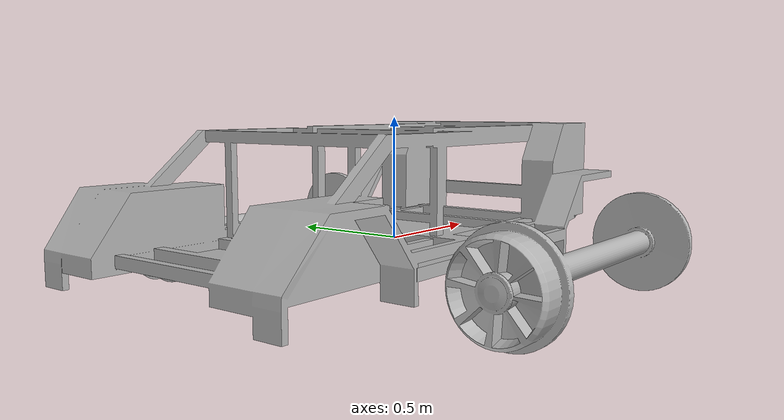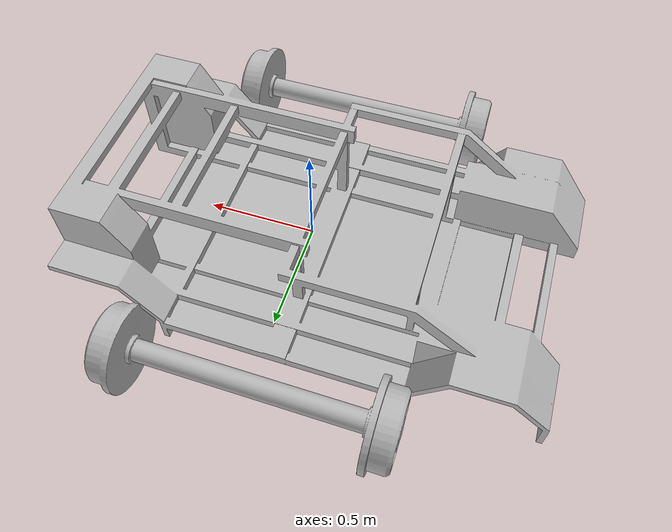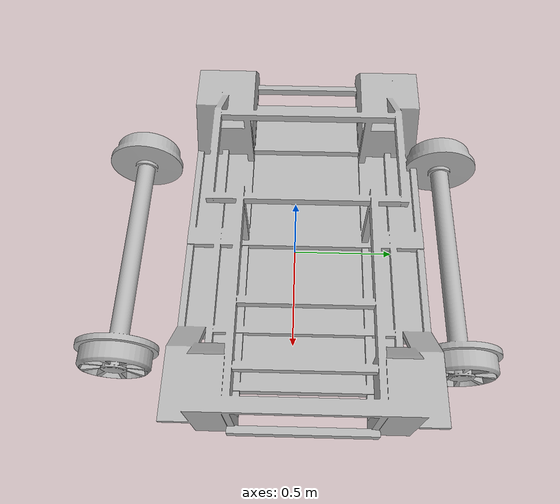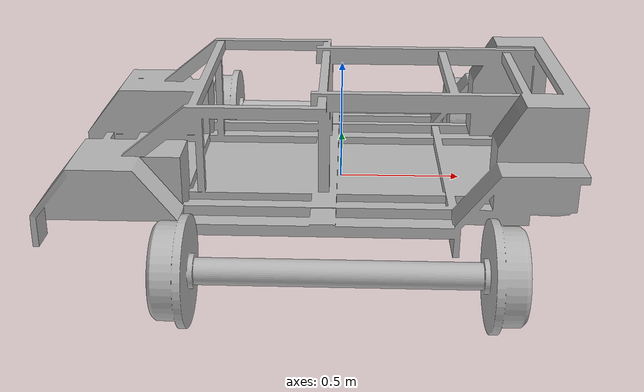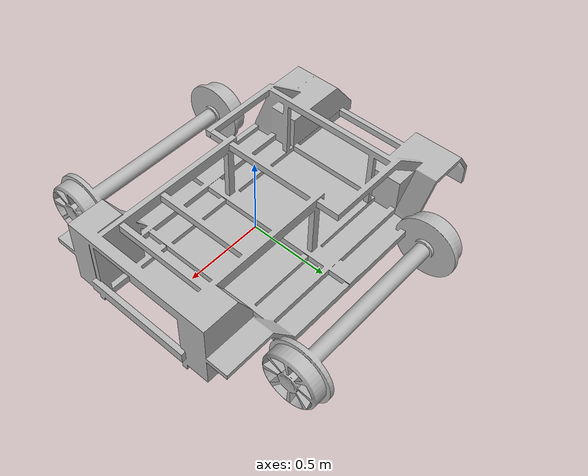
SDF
<?xml version='1.0'?>
<sdf version='1.7'>
  <model name='amp'>
    <static>false</static>

    <link name='hull'>

      <pose>0.003725 0.051897 0.000757 0 -0 0</pose>

      <collision name='collision'>
        <geometry>
          <mesh>
            <uri>model://amp_hull/amp_hull.obj</uri>
          </mesh>
        </geometry>
      </collision>

      <visual name='visual'>
        <geometry>
          <mesh>
            <uri>model://amp_hull/amp_hull.obj</uri>
            <scale>1 1 1</scale>
          </mesh>
        </geometry>
      </visual>
    </link>

    <link name='back_axle'>
      <pose>0 0.8 0 0 0 0</pose>

      <visual name='visual'>
        <geometry>
          <mesh>
            <uri>model://amp_axle/amp_axle.obj</uri>
            <scale>1 1 1</scale>
          </mesh>
        </geometry>
      </visual>

      <collision name='collision'>
        <geometry>
          <mesh>
            <uri>model://amp_axle/amp_axle.obj</uri>
          </mesh>
        </geometry>
      </collision>

    </link>

    <link name='front_axle'>
      <pose>0 -0.85 0 0 0 0</pose>

      <visual name='visual'>
        <geometry>
          <mesh>
            <uri>model://amp_axle/amp_axle.obj</uri>
            <scale>1 1 1</scale>
          </mesh>

        </geometry>
      </visual>

      <collision name='collision'>
        <geometry>
          <mesh>
            <uri>model://amp_axle/amp_axle.obj</uri>
          </mesh>

        </geometry>
      </collision>

    </link>

    <joint type="revolute" name="front_axle_hinge">
      <pose>0 0 0 0 0 0</pose>
      <child>front_axle</child>
      <parent>hull</parent>
      <axis>
        <xyz>1 0 0</xyz>
      </axis>
    </joint>

    <joint type="revolute" name="back_axle_hinge">
      <pose>0 0 0 0 0 0</pose>
      <child>back_axle</child>
      <parent>hull</parent>
      <axis>
        <xyz>1 0 0</xyz>
      </axis>
    </joint>

    <plugin name="diff_drive" filename="libgazebo_ros_diff_drive.so">
      <robot_namespace>/amp</robot_namespace>

      <command_topic>/cmd_vel</command_topic>

      <odometry_topic>/odom</odometry_topic>

      <publish_odom>true</publish_odom>
      <publish_odom_tf>true</publish_odom_tf>
      <publish_wheel_tf>true</publish_wheel_tf>

      <wheel_separation>0.5</wheel_separation>
      <wheel_diameter>0.2</wheel_diameter>

      <left_joint>front_axle_hinge</left_joint>
      <right_joint>back_axle_hinge</right_joint>

      <update_rate>50.0</update_rate>
      <odom_frame>odom</odom_frame>
      <base_frame>amp</base_frame>

    </plugin>
  </model>
</sdf>
